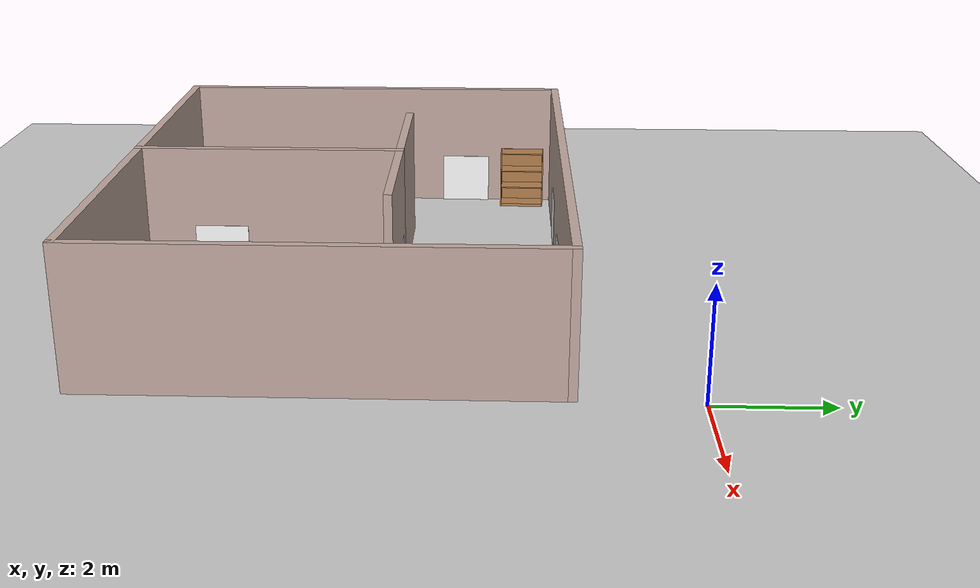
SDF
<sdf version="1.6">
 <world name="default">
  <model name="ground_plane">
   <static>1</static>
   <link name="link">
    <collision name="collision">
     <geometry><plane><normal>0 0 1</normal><size>100 100</size></plane></geometry>
     <surface><friction><ode><mu>100</mu><mu2>50</mu2></ode></friction></surface>
    </collision>
    <visual name="visual">
     <cast_shadows>0</cast_shadows>
     <geometry><plane><normal>0 0 1</normal><size>100 100</size></plane></geometry>
     <material>
      <script><uri>file://media/materials/scripts/gazebo.material</uri><name>Gazebo/Grey</name></script>
     </material>
    </visual>
   </link>
  </model>
  <model name="empty_room_colored_walls">
   <pose>-5.06103 -5.97507 0 0 -0 0</pose>
   <link name="Wall_62">
    <collision name="Wall_62_Collision">
     <geometry><box><size>10 0.15 2.5</size></box></geometry>
     <pose>0 0 1.25 0 -0 0</pose>
    </collision>
    <visual name="Wall_62_Visual">
     <pose>0 0 1.25 0 -0 0</pose>
     <geometry><box><size>10 0.15 2.5</size></box></geometry>
     <material>
      <script><uri>file://media/materials/scripts/gazebo.material</uri><name>Gazebo/Grey</name></script>
      <ambient>0.760784 0.662745 0.627451 1</ambient>
     </material>
    </visual>
    <pose>0 -3.92179 0 0 -0 0</pose>
   </link>
   <link name="Wall_63">
    <collision name="Wall_63_Collision">
     <geometry><box><size>8 0.15 2.5</size></box></geometry>
     <pose>0 0 1.25 0 -0 0</pose>
    </collision>
    <visual name="Wall_63_Visual">
     <pose>0 0 1.25 0 -0 0</pose>
     <geometry><box><size>8 0.15 2.5</size></box></geometry>
     <material>
      <script><uri>file://media/materials/scripts/gazebo.material</uri><name>Gazebo/Grey</name></script>
      <ambient>0.760784 0.662745 0.627451 1</ambient>
     </material>
    </visual>
    <pose>4.925 0.003206 0 0 -0 1.5708</pose>
   </link>
   <link name="Wall_64">
    <collision name="Wall_64_Collision">
     <geometry><box><size>10 0.15 2.5</size></box></geometry>
     <pose>0 0 1.25 0 -0 0</pose>
    </collision>
    <visual name="Wall_64_Visual">
     <pose>0 0 1.25 0 -0 0</pose>
     <geometry><box><size>10 0.15 2.5</size></box></geometry>
     <material>
      <script><uri>file://media/materials/scripts/gazebo.material</uri><name>Gazebo/Grey</name></script>
      <ambient>0.760784 0.662745 0.627451 1</ambient>
     </material>
    </visual>
    <pose>0 3.92821 0 0 -0 3.14159</pose>
   </link>
   <link name="Wall_65">
    <collision name="Wall_65_Collision">
     <geometry><box><size>8 0.15 2.5</size></box></geometry>
     <pose>0 0 1.25 0 -0 0</pose>
    </collision>
    <visual name="Wall_65_Visual">
     <pose>0 0 1.25 0 -0 0</pose>
     <geometry><box><size>8 0.15 2.5</size></box></geometry>
     <material>
      <script><uri>file://media/materials/scripts/gazebo.material</uri><name>Gazebo/Grey</name></script>
      <ambient>0.760784 0.662745 0.627451 1</ambient>
     </material>
    </visual>
    <pose>-4.925 0.003206 0 0 0 -1.5708</pose>
   </link>
   <link name="Wall_70">
    <collision name="Wall_70_Collision">
     <geometry><box><size>5 0.15 2.5</size></box></geometry>
     <pose>0 0 1.25 0 -0 0</pose>
    </collision>
    <visual name="Wall_70_Visual">
     <pose>0 0 1.25 0 -0 0</pose>
     <geometry><box><size>5 0.15 2.5</size></box></geometry>
     <material>
      <script><uri>file://media/materials/scripts/gazebo.material</uri><name>Gazebo/Grey</name></script>
      <ambient>0.760784 0.662745 0.627451 1</ambient>
     </material>
    </visual>
    <pose>-0.121943 -1.50321 0 0 -0 1.5708</pose>
   </link>
   <link name="Wall_71">
    <collision name="Wall_71_Collision">
     <geometry><box><size>2.75 0.15 2.5</size></box></geometry>
     <pose>0 0 1.25 0 -0 0</pose>
    </collision>
    <visual name="Wall_71_Visual">
     <pose>0 0 1.25 0 -0 0</pose>
     <geometry><box><size>2.75 0.15 2.5</size></box></geometry>
     <material>
      <script><uri>file://media/materials/scripts/gazebo.material</uri><name>Gazebo/Grey</name></script>
      <ambient>0.760784 0.662745 0.627451 1</ambient>
     </material>
    </visual>
    <pose>1.17806 0.921794 0 0 -0 0</pose>
   </link>
   <link name="Wall_73">
    <collision name="Wall_73_Collision">
     <geometry><box><size>2.75 0.15 2.5</size></box></geometry>
     <pose>0 0 1.25 0 -0 0</pose>
    </collision>
    <visual name="Wall_73_Visual">
     <pose>0 0 1.25 0 -0 0</pose>
     <geometry><box><size>2.75 0.15 2.5</size></box></geometry>
     <material>
      <script><uri>file://media/materials/scripts/gazebo.material</uri><name>Gazebo/Grey</name></script>
      <ambient>0.760784 0.662745 0.627451 1</ambient>
     </material>
    </visual>
    <pose>-1.42194 0.921794 0 0 -0 3.14159</pose>
   </link>
   <static>1</static>
  </model>
  <model name="bookshelf">
   <static>1</static>
   <link name="link">
    <inertial><mass>1</mass></inertial>
    <collision name="back">
     <pose>0 0.005 0.6 0 -0 0</pose>
     <geometry><box><size>0.9 0.01 1.2</size></box></geometry>
    </collision>
    <visual name="visual1">
     <pose>0 0.005 0.6 0 -0 0</pose>
     <geometry><box><size>0.9 0.01 1.2</size></box></geometry>
     <material>
      <script><uri>file://media/materials/scripts/gazebo.material</uri><name>Gazebo/Wood</name></script>
     </material>
    </visual>
    <collision name="left_side">
     <pose>0.45 -0.195 0.6 0 -0 0</pose>
     <geometry><box><size>0.02 0.4 1.2</size></box></geometry>
    </collision>
    <visual name="visual2">
     <pose>0.45 -0.195 0.6 0 -0 0</pose>
     <geometry><box><size>0.02 0.4 1.2</size></box></geometry>
     <material>
      <script><uri>file://media/materials/scripts/gazebo.material</uri><name>Gazebo/Wood</name></script>
     </material>
    </visual>
    <collision name="right_side">
     <pose>-0.45 -0.195 0.6 0 -0 0</pose>
     <geometry><box><size>0.02 0.4 1.2</size></box></geometry>
    </collision>
    <visual name="visual3">
     <pose>-0.45 -0.195 0.6 0 -0 0</pose>
     <geometry><box><size>0.02 0.4 1.2</size></box></geometry>
     <material>
      <script><uri>file://media/materials/scripts/gazebo.material</uri><name>Gazebo/Wood</name></script>
     </material>
    </visual>
    <collision name="bottom">
     <pose>0 -0.195 0.03 0 -0 0</pose>
     <geometry><box><size>0.88 0.4 0.06</size></box></geometry>
    </collision>
    <visual name="visual4">
     <pose>0 -0.195 0.03 0 -0 0</pose>
     <geometry><box><size>0.88 0.4 0.06</size></box></geometry>
     <material>
      <script><uri>file://media/materials/scripts/gazebo.material</uri><name>Gazebo/Wood</name></script>
     </material>
    </visual>
    <collision name="top">
     <pose>0 -0.195 1.19 0 -0 0</pose>
     <geometry><box><size>0.88 0.4 0.02</size></box></geometry>
    </collision>
    <visual name="visual5">
     <pose>0 -0.195 1.19 0 -0 0</pose>
     <geometry><box><size>0.88 0.4 0.02</size></box></geometry>
     <material>
      <script><uri>file://media/materials/scripts/gazebo.material</uri><name>Gazebo/Wood</name></script>
     </material>
    </visual>
    <collision name="low_shelf">
     <pose>0 -0.195 0.43 0 -0 0</pose>
     <geometry><box><size>0.88 0.4 0.02</size></box></geometry>
    </collision>
    <visual name="visual6">
     <pose>0 -0.195 0.43 0 -0 0</pose>
     <geometry><box><size>0.88 0.4 0.02</size></box></geometry>
     <material>
      <script><uri>file://media/materials/scripts/gazebo.material</uri><name>Gazebo/Wood</name></script>
     </material>
    </visual>
    <collision name="high_shelf">
     <pose>0 -0.195 0.8 0 -0 0</pose>
     <geometry><box><size>0.88 0.4 0.02</size></box></geometry>
    </collision>
    <visual name="visual7">
     <pose>0 -0.195 0.8 0 -0 0</pose>
     <geometry><box><size>0.88 0.4 0.02</size></box></geometry>
     <material>
      <script><uri>file://media/materials/scripts/gazebo.material</uri><name>Gazebo/Wood</name></script>
     </material>
    </visual>
   </link>
   <pose>-9.80012 -2.72902 0 0 -0 1.5503</pose>
  </model>
  <model name="electric_plug_1_4">
   <link name="link_0">
    <pose>4e-06 0 0 0 -0 0</pose>
    <inertial>
     <mass>1</mass>
     <inertia>
      <ixx>0.166667</ixx>
      <ixy>0</ixy>
      <ixz>0</ixz>
      <iyy>0.166667</iyy>
      <iyz>0</iyz>
      <izz>0.166667</izz>
     </inertia>
    </inertial>
    <visual name="visual">
     <geometry><box><size>0.01 1 1</size></box></geometry>
     <material>
      <lighting>1</lighting>
      <script>
       <uri>model://electric_plug_1_M/materials/scripts</uri>
       <uri>model://electric_plug_1_M/materials/textures</uri>
       <name>Electric/Plug1M</name>
      </script>
      <ambient>1 1 1 1</ambient>
      <diffuse>1 1 1 1</diffuse>
      <specular>0.01 0.01 0.01 1</specular>
      <emissive>1 1 1 1</emissive>
     </material>
     <cast_shadows>0</cast_shadows>
    </visual>
    <collision name="collision">
     <geometry><box><size>0.01 1 1</size></box></geometry>
     <surface>
      <friction>
       <ode><mu>1</mu><mu2>1</mu2><fdir1>0 0 0</fdir1><slip1>0</slip1><slip2>0</slip2></ode>
       <torsional>
        <coefficient>1</coefficient>
        <patch_radius>0</patch_radius>
        <surface_radius>0</surface_radius>
        <use_patch_radius>1</use_patch_radius>
        <ode><slip>0</slip></ode>
       </torsional>
      </friction>
      <bounce><restitution_coefficient>0</restitution_coefficient><threshold>1e+06</threshold></bounce>
      <contact>
       <collide_without_contact>0</collide_without_contact>
       <collide_without_contact_bitmask>1</collide_without_contact_bitmask>
       <collide_bitmask>1</collide_bitmask>
       <ode>
        <soft_cfm>0</soft_cfm>
        <soft_erp>0.2</soft_erp>
        <kp>1e+13</kp>
        <kd>1</kd>
        <max_vel>0.01</max_vel>
        <min_depth>0</min_depth>
       </ode>
       <bullet>
        <split_impulse>1</split_impulse>
        <split_impulse_penetration_threshold>-0.01</split_impulse_penetration_threshold>
        <soft_cfm>0</soft_cfm>
        <soft_erp>0.2</soft_erp>
        <kp>1e+13</kp>
        <kd>1</kd>
       </bullet>
      </contact>
     </surface>
    </collision>
   </link>
   <static>0</static>
   <pose>-9.90603 -6.08607 0.499998 5e-06 -0 -4e-06</pose>
  </model>
  <model name="Gas_2_0">
   <link name="link_0">
    <pose>4e-06 0 0 0 -0 0</pose>
    <inertial>
     <mass>1</mass>
     <inertia>
      <ixx>0.166667</ixx>
      <ixy>0</ixy>
      <ixz>0</ixz>
      <iyy>0.166667</iyy>
      <iyz>0</iyz>
      <izz>0.166667</izz>
     </inertia>
    </inertial>
    <visual name="visual">
     <geometry><box><size>0.01 1 1</size></box></geometry>
     <material>
      <lighting>1</lighting>
      <script>
       <uri>model://gas_2_N/materials/scripts</uri>
       <uri>model://gas_2_N/materials/textures</uri>
       <name>Gas/Gas2N</name>
      </script>
      <ambient>1 1 1 1</ambient>
      <diffuse>1 1 1 1</diffuse>
      <specular>0.01 0.01 0.01 1</specular>
      <emissive>1 1 1 1</emissive>
     </material>
     <cast_shadows>0</cast_shadows>
    </visual>
    <collision name="collision">
     <geometry><box><size>0.01 1 1</size></box></geometry>
     <surface>
      <friction>
       <ode><mu>1</mu><mu2>1</mu2><fdir1>0 0 0</fdir1><slip1>0</slip1><slip2>0</slip2></ode>
       <torsional>
        <coefficient>1</coefficient>
        <patch_radius>0</patch_radius>
        <surface_radius>0</surface_radius>
        <use_patch_radius>1</use_patch_radius>
        <ode><slip>0</slip></ode>
       </torsional>
      </friction>
      <bounce><restitution_coefficient>0</restitution_coefficient><threshold>1e+06</threshold></bounce>
      <contact>
       <collide_without_contact>0</collide_without_contact>
       <collide_without_contact_bitmask>1</collide_without_contact_bitmask>
       <collide_bitmask>1</collide_bitmask>
       <ode>
        <soft_cfm>0</soft_cfm>
        <soft_erp>0.2</soft_erp>
        <kp>1e+13</kp>
        <kd>1</kd>
        <max_vel>0.01</max_vel>
        <min_depth>0</min_depth>
       </ode>
       <bullet>
        <split_impulse>1</split_impulse>
        <split_impulse_penetration_threshold>-0.01</split_impulse_penetration_threshold>
        <soft_cfm>0</soft_cfm>
        <soft_erp>0.2</soft_erp>
        <kp>1e+13</kp>
        <kd>1</kd>
       </bullet>
      </contact>
     </surface>
    </collision>
   </link>
   <static>0</static>
   <pose>-4.38998 -2.13872 0.499999 2e-06 -6e-06 1.59448</pose>
  </model>
  <model name="Gas_3_2">
   <link name="link_0">
    <pose>4e-06 0 0 0 -0 0</pose>
    <inertial>
     <mass>1</mass>
     <inertia>
      <ixx>0.166667</ixx>
      <ixy>0</ixy>
      <ixz>0</ixz>
      <iyy>0.166667</iyy>
      <iyz>0</iyz>
      <izz>0.166667</izz>
     </inertia>
    </inertial>
    <visual name="visual">
     <geometry><box><size>0.01 1 1</size></box></geometry>
     <material>
      <lighting>1</lighting>
      <script>
       <uri>model://gas_3_N/materials/scripts</uri>
       <uri>model://gas_3_N/materials/textures</uri>
       <name>Gas/Gas3N</name>
      </script>
      <ambient>1 1 1 1</ambient>
      <diffuse>1 1 1 1</diffuse>
      <specular>0.01 0.01 0.01 1</specular>
      <emissive>1 1 1 1</emissive>
     </material>
     <cast_shadows>0</cast_shadows>
    </visual>
    <collision name="collision">
     <geometry><box><size>0.01 1 1</size></box></geometry>
     <surface>
      <friction>
       <ode><mu>1</mu><mu2>1</mu2><fdir1>0 0 0</fdir1><slip1>0</slip1><slip2>0</slip2></ode>
       <torsional>
        <coefficient>1</coefficient>
        <patch_radius>0</patch_radius>
        <surface_radius>0</surface_radius>
        <use_patch_radius>1</use_patch_radius>
        <ode><slip>0</slip></ode>
       </torsional>
      </friction>
      <bounce><restitution_coefficient>0</restitution_coefficient><threshold>1e+06</threshold></bounce>
      <contact>
       <collide_without_contact>0</collide_without_contact>
       <collide_without_contact_bitmask>1</collide_without_contact_bitmask>
       <collide_bitmask>1</collide_bitmask>
       <ode>
        <soft_cfm>0</soft_cfm>
        <soft_erp>0.2</soft_erp>
        <kp>1e+13</kp>
        <kd>1</kd>
        <max_vel>0.01</max_vel>
        <min_depth>0</min_depth>
       </ode>
       <bullet>
        <split_impulse>1</split_impulse>
        <split_impulse_penetration_threshold>-0.01</split_impulse_penetration_threshold>
        <soft_cfm>0</soft_cfm>
        <soft_erp>0.2</soft_erp>
        <kp>1e+13</kp>
        <kd>1</kd>
       </bullet>
      </contact>
     </surface>
    </collision>
   </link>
   <static>0</static>
   <pose>-4.23381 -4.97328 0.5 0 1e-06 1.5708</pose>
  </model>
  <model name="Gas_2_1">
   <link name="link_0">
    <pose>4e-06 0 0 0 -0 0</pose>
    <inertial>
     <mass>1</mass>
     <inertia>
      <ixx>0.166667</ixx>
      <ixy>0</ixy>
      <ixz>0</ixz>
      <iyy>0.166667</iyy>
      <iyz>0</iyz>
      <izz>0.166667</izz>
     </inertia>
    </inertial>
    <visual name="visual">
     <geometry><box><size>0.01 1 1</size></box></geometry>
     <material>
      <lighting>1</lighting>
      <script>
       <uri>model://gas_2_N/materials/scripts</uri>
       <uri>model://gas_2_N/materials/textures</uri>
       <name>Gas/Gas2N</name>
      </script>
      <ambient>1 1 1 1</ambient>
      <diffuse>1 1 1 1</diffuse>
      <specular>0.01 0.01 0.01 1</specular>
      <emissive>1 1 1 1</emissive>
     </material>
     <cast_shadows>0</cast_shadows>
    </visual>
    <collision name="collision">
     <geometry><box><size>0.01 1 1</size></box></geometry>
     <surface>
      <friction>
       <ode><mu>1</mu><mu2>1</mu2><fdir1>0 0 0</fdir1><slip1>0</slip1><slip2>0</slip2></ode>
       <torsional>
        <coefficient>1</coefficient>
        <patch_radius>0</patch_radius>
        <surface_radius>0</surface_radius>
        <use_patch_radius>1</use_patch_radius>
        <ode><slip>0</slip></ode>
       </torsional>
      </friction>
      <bounce><restitution_coefficient>0</restitution_coefficient><threshold>1e+06</threshold></bounce>
      <contact>
       <collide_without_contact>0</collide_without_contact>
       <collide_without_contact_bitmask>1</collide_without_contact_bitmask>
       <collide_bitmask>1</collide_bitmask>
       <ode>
        <soft_cfm>0</soft_cfm>
        <soft_erp>0.2</soft_erp>
        <kp>1e+13</kp>
        <kd>1</kd>
        <max_vel>0.01</max_vel>
        <min_depth>0</min_depth>
       </ode>
       <bullet>
        <split_impulse>1</split_impulse>
        <split_impulse_penetration_threshold>-0.01</split_impulse_penetration_threshold>
        <soft_cfm>0</soft_cfm>
        <soft_erp>0.2</soft_erp>
        <kp>1e+13</kp>
        <kd>1</kd>
       </bullet>
      </contact>
     </surface>
    </collision>
   </link>
   <static>0</static>
   <pose>-9.87036 -3.96916 0.500002 0 0.000499 0</pose>
  </model>
  <model name="Gas_4_2">
   <link name="link_0">
    <pose>4e-06 0 0 0 -0 0</pose>
    <inertial>
     <mass>1</mass>
     <inertia>
      <ixx>0.166667</ixx>
      <ixy>0</ixy>
      <ixz>0</ixz>
      <iyy>0.166667</iyy>
      <iyz>0</iyz>
      <izz>0.166667</izz>
     </inertia>
    </inertial>
    <visual name="visual">
     <geometry><box><size>0.01 1 1</size></box></geometry>
     <material>
      <lighting>1</lighting>
      <script>
       <uri>model://gas_4_N/materials/scripts</uri>
       <uri>model://gas_4_N/materials/textures</uri>
       <name>Gas/Gas4N</name>
      </script>
      <ambient>1 1 1 1</ambient>
      <diffuse>1 1 1 1</diffuse>
      <specular>0.01 0.01 0.01 1</specular>
      <emissive>1 1 1 1</emissive>
     </material>
     <cast_shadows>0</cast_shadows>
    </visual>
    <collision name="collision">
     <geometry><box><size>0.01 1 1</size></box></geometry>
     <surface>
      <friction>
       <ode><mu>1</mu><mu2>1</mu2><fdir1>0 0 0</fdir1><slip1>0</slip1><slip2>0</slip2></ode>
       <torsional>
        <coefficient>1</coefficient>
        <patch_radius>0</patch_radius>
        <surface_radius>0</surface_radius>
        <use_patch_radius>1</use_patch_radius>
        <ode><slip>0</slip></ode>
       </torsional>
      </friction>
      <bounce><restitution_coefficient>0</restitution_coefficient><threshold>1e+06</threshold></bounce>
      <contact>
       <collide_without_contact>0</collide_without_contact>
       <collide_without_contact_bitmask>1</collide_without_contact_bitmask>
       <collide_bitmask>1</collide_bitmask>
       <ode>
        <soft_cfm>0</soft_cfm>
        <soft_erp>0.2</soft_erp>
        <kp>1e+13</kp>
        <kd>1</kd>
        <max_vel>0.01</max_vel>
        <min_depth>0</min_depth>
       </ode>
       <bullet>
        <split_impulse>1</split_impulse>
        <split_impulse_penetration_threshold>-0.01</split_impulse_penetration_threshold>
        <soft_cfm>0</soft_cfm>
        <soft_erp>0.2</soft_erp>
        <kp>1e+13</kp>
        <kd>1</kd>
       </bullet>
      </contact>
     </surface>
    </collision>
   </link>
   <static>0</static>
   <pose>-7.22652 -2.12685 0.5 0 -2e-06 -1.5708</pose>
  </model>
  <model name="Gas_1_1">
   <link name="link_0">
    <pose>4e-06 0 0 0 -0 0</pose>
    <inertial>
     <mass>1</mass>
     <inertia>
      <ixx>0.166667</ixx>
      <ixy>0</ixy>
      <ixz>0</ixz>
      <iyy>0.166667</iyy>
      <iyz>0</iyz>
      <izz>0.166667</izz>
     </inertia>
    </inertial>
    <visual name="visual">
     <geometry><box><size>0.01 1 1</size></box></geometry>
     <material>
      <lighting>1</lighting>
      <script>
       <uri>model://gas_1_N/materials/scripts</uri>
       <uri>model://gas_1_N/materials/textures</uri>
       <name>Gas/Gas1N</name>
      </script>
      <ambient>1 1 1 1</ambient>
      <diffuse>1 1 1 1</diffuse>
      <specular>0.01 0.01 0.01 1</specular>
      <emissive>1 1 1 1</emissive>
     </material>
     <cast_shadows>0</cast_shadows>
    </visual>
    <collision name="collision">
     <geometry><box><size>0.01 1 1</size></box></geometry>
     <surface>
      <friction>
       <ode><mu>1</mu><mu2>1</mu2><fdir1>0 0 0</fdir1><slip1>0</slip1><slip2>0</slip2></ode>
       <torsional>
        <coefficient>1</coefficient>
        <patch_radius>0</patch_radius>
        <surface_radius>0</surface_radius>
        <use_patch_radius>1</use_patch_radius>
        <ode><slip>0</slip></ode>
       </torsional>
      </friction>
      <bounce><restitution_coefficient>0</restitution_coefficient><threshold>1e+06</threshold></bounce>
      <contact>
       <collide_without_contact>0</collide_without_contact>
       <collide_without_contact_bitmask>1</collide_without_contact_bitmask>
       <collide_bitmask>1</collide_bitmask>
       <ode>
        <soft_cfm>0</soft_cfm>
        <soft_erp>0.2</soft_erp>
        <kp>1e+13</kp>
        <kd>1</kd>
        <max_vel>0.01</max_vel>
        <min_depth>0</min_depth>
       </ode>
       <bullet>
        <split_impulse>1</split_impulse>
        <split_impulse_penetration_threshold>-0.01</split_impulse_penetration_threshold>
        <soft_cfm>0</soft_cfm>
        <soft_erp>0.2</soft_erp>
        <kp>1e+13</kp>
        <kd>1</kd>
       </bullet>
      </contact>
     </surface>
    </collision>
   </link>
   <static>0</static>
   <pose>-5.10297 -8.43011 0.5 0 1e-06 4e-06</pose>
  </model>
 </world>
</sdf>
